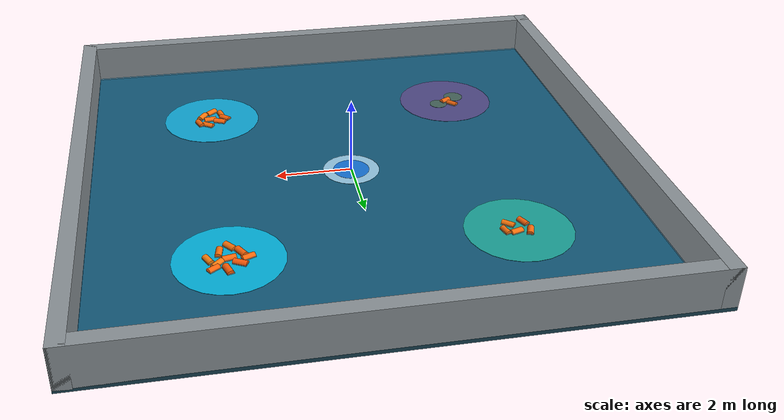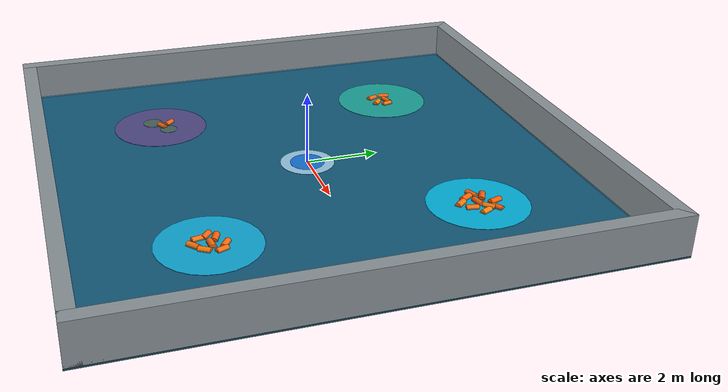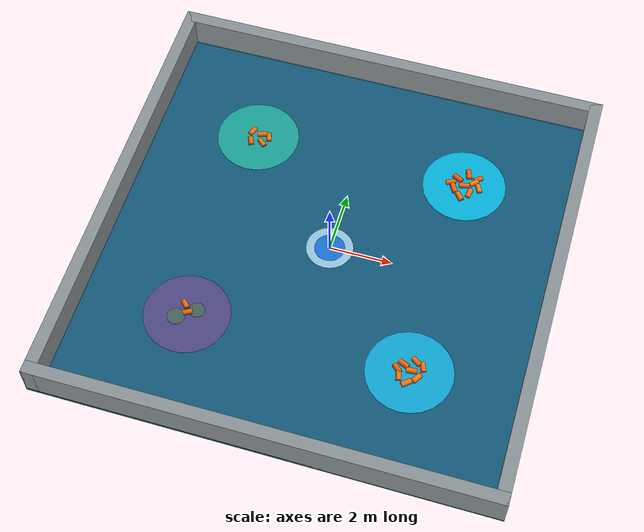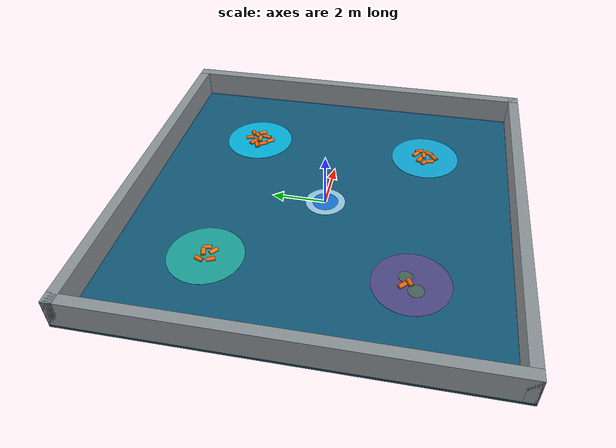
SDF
<?xml version="1.0" ?>
<sdf version="1.6">
  <world name="fish_farm_world">

    <!-- PHYSICS & SCENE CONFIGURATION                                       -->
    <physics type="ode">
      <real_time_update_rate>1000.0</real_time_update_rate>
      <max_step_size>0.001</max_step_size>
      <real_time_factor>1.0</real_time_factor>
      <ode>
        <solver>
          <type>quick</type>
          <iters>50</iters>
          <sor>1.4</sor>
        </solver>
        <constraints>
          <cfm>0.0</cfm>
          <erp>0.2</erp>
          <contact_max_correcting_vel>100.0</contact_max_correcting_vel>
          <contact_surface_layer>0.001</contact_surface_layer>
        </constraints>
      </ode>
    </physics>

    <scene>
      <ambient>0.65 0.72 0.78 1.0</ambient>
      <background>0.52 0.75 0.92 1.0</background>
      <shadows>true</shadows>
    </scene>

    <!-- Directional Sunlight -->
    <light type="directional" name="sun">
      <cast_shadows>true</cast_shadows>
      <pose>0 0 15 0 0 0</pose>
      <diffuse>0.9 0.9 0.85 1</diffuse>
      <specular>0.3 0.3 0.3 1</specular>
      <attenuation>
        <range>1000</range>
        <constant>0.9</constant>
        <linear>0.01</linear>
        <quadratic>0.001</quadratic>
      </attenuation>
      <direction>-0.3 0.2 -0.9</direction>
    </light>

    <!-- POND FLOOR & BOUNDING WALLS (14m x 14m Aquaculture Pond)            -->
    <model name="aquaculture_pond_structure">
      <static>true</static>
      <pose>0 0 0 0 0 0</pose>

      <!-- Pond Floor (Collision + Dark Teal Floor Visual) -->
      <link name="pond_floor">
        <collision name="floor_collision">
          <pose>0 0 -0.05 0 0 0</pose>
          <geometry>
            <box>
              <size>16.0 16.0 0.1</size>
            </box>
          </geometry>
          <surface>
            <friction>
              <ode>
                <mu>0.1</mu>
                <mu2>0.1</mu2>
              </ode>
            </friction>
          </surface>
        </collision>
        <visual name="floor_visual">
          <pose>0 0 -0.05 0 0 0</pose>
          <geometry>
            <box>
              <size>14.4 14.4 0.1</size>
            </box>
          </geometry>
          <material>
            <ambient>0.08 0.22 0.28 1</ambient>
            <diffuse>0.10 0.26 0.32 1</diffuse>
            <specular>0.05 0.05 0.05 1</specular>
          </material>
        </visual>

        <!-- North Wall (+X = +7.0m) -->
        <collision name="wall_north_col">
          <pose>7.0 0 0.5 0 0 0</pose>
          <geometry><box><size>0.4 14.4 1.1</size></box></geometry>
        </collision>
        <visual name="wall_north_vis">
          <pose>7.0 0 0.5 0 0 0</pose>
          <geometry><box><size>0.4 14.4 1.1</size></box></geometry>
          <material>
            <ambient>0.45 0.47 0.50 1</ambient>
            <diffuse>0.55 0.58 0.60 1</diffuse>
          </material>
        </visual>

        <!-- South Wall (-X = -7.0m) -->
        <collision name="wall_south_col">
          <pose>-7.0 0 0.5 0 0 0</pose>
          <geometry><box><size>0.4 14.4 1.1</size></box></geometry>
        </collision>
        <visual name="wall_south_vis">
          <pose>-7.0 0 0.5 0 0 0</pose>
          <geometry><box><size>0.4 14.4 1.1</size></box></geometry>
          <material>
            <ambient>0.45 0.47 0.50 1</ambient>
            <diffuse>0.55 0.58 0.60 1</diffuse>
          </material>
        </visual>

        <!-- East Wall (+Y = +7.0m) -->
        <collision name="wall_east_col">
          <pose>0 7.0 0.5 0 0 0</pose>
          <geometry><box><size>14.4 0.4 1.1</size></box></geometry>
        </collision>
        <visual name="wall_east_vis">
          <pose>0 7.0 0.5 0 0 0</pose>
          <geometry><box><size>14.4 0.4 1.1</size></box></geometry>
          <material>
            <ambient>0.45 0.47 0.50 1</ambient>
            <diffuse>0.55 0.58 0.60 1</diffuse>
          </material>
        </visual>

        <!-- West Wall (-Y = -7.0m) -->
        <collision name="wall_west_col">
          <pose>0 -7.0 0.5 0 0 0</pose>
          <geometry><box><size>14.4 0.4 1.1</size></box></geometry>
        </collision>
        <visual name="wall_west_vis">
          <pose>0 -7.0 0.5 0 0 0</pose>
          <geometry><box><size>14.4 0.4 1.1</size></box></geometry>
          <material>
            <ambient>0.45 0.47 0.50 1</ambient>
            <diffuse>0.55 0.58 0.60 1</diffuse>
          </material>
        </visual>

        <!-- Semi-Transparent Water Surface Plane -->
        <visual name="water_surface_plane">
          <pose>0 0 0.035 0 0 0</pose>
          <transparency>0.62</transparency>
          <cast_shadows>false</cast_shadows>
          <geometry>
            <box>
              <size>13.6 13.6 0.004</size>
            </box>
          </geometry>
          <material>
            <ambient>0.05 0.48 0.68 0.38</ambient>
            <diffuse>0.08 0.55 0.78 0.38</diffuse>
            <specular>0.6 0.6 0.6 0.38</specular>
          </material>
        </visual>

        <!-- HOME / REFILL DOCK AT (0.0, 0.0) -->
        <visual name="home_dock_pad">
          <pose>0 0 0.003 0 0 0</pose>
          <geometry>
            <cylinder>
              <radius>0.75</radius>
              <length>0.006</length>
            </cylinder>
          </geometry>
          <material>
            <ambient>0.85 0.88 0.92 1</ambient>
            <diffuse>0.92 0.95 0.98 1</diffuse>
          </material>
        </visual>
        <visual name="home_dock_inner">
          <pose>0 0 0.005 0 0 0</pose>
          <geometry>
            <cylinder>
              <radius>0.48</radius>
              <length>0.006</length>
            </cylinder>
          </geometry>
          <material>
            <ambient>0.10 0.38 0.85 1</ambient>
            <diffuse>0.12 0.42 0.90 1</diffuse>
          </material>
        </visual>
      </link>
    </model>

    <!-- FEEDING ZONE 1 (X=3.5, Y=3.5): HIGH FISH AGGREGATION / DEPLETED     -->
    <!-- Needs immediate feeding! Vibrant exposed cyan tray + dense orange   -->
    <!-- fish school cluster so OpenCV camera detects ~85-95% demand.        -->
    <model name="feeding_zone_1_high_demand">
      <static>true</static>
      <pose>3.5 3.5 0.0 0 0 0</pose>
      <link name="zone_1_link">
        <!-- Depleted Feed Tray Base (Bright Cyan/Turquoise Floor Disc) -->
        <visual name="z1_tray">
          <pose>0 0 0.004 0 0 0</pose>
          <geometry>
            <cylinder><radius>1.35</radius><length>0.008</length></cylinder>
          </geometry>
          <material>
            <ambient>0.0 0.72 0.85 1</ambient>
            <diffuse>0.0 0.82 0.95 1</diffuse>
          </material>
        </visual>

        <!-- High-Density Active Fish School (Vibrant Orange/Gold Fish Silhouettes) -->
        <visual name="z1_fish_1"><pose>0.0 0.0 0.018 0 1.57 0.2</pose><geometry><cylinder><radius>0.09</radius><length>0.34</length></cylinder></geometry><material><ambient>0.95 0.38 0.02 1</ambient><diffuse>1.0 0.42 0.05 1</diffuse></material></visual>
        <visual name="z1_fish_2"><pose>0.28 0.18 0.018 0 1.57 0.8</pose><geometry><cylinder><radius>0.085</radius><length>0.32</length></cylinder></geometry><material><ambient>0.98 0.45 0.04 1</ambient><diffuse>1.0 0.50 0.06 1</diffuse></material></visual>
        <visual name="z1_fish_3"><pose>-0.25 0.22 0.018 0 1.57 -0.5</pose><geometry><cylinder><radius>0.09</radius><length>0.35</length></cylinder></geometry><material><ambient>0.95 0.32 0.02 1</ambient><diffuse>1.0 0.36 0.04 1</diffuse></material></visual>
        <visual name="z1_fish_4"><pose>0.22 -0.26 0.018 0 1.57 1.4</pose><geometry><cylinder><radius>0.085</radius><length>0.33</length></cylinder></geometry><material><ambient>0.95 0.40 0.03 1</ambient><diffuse>1.0 0.45 0.05 1</diffuse></material></visual>
        <visual name="z1_fish_5"><pose>-0.30 -0.20 0.018 0 1.57 2.1</pose><geometry><cylinder><radius>0.09</radius><length>0.34</length></cylinder></geometry><material><ambient>0.95 0.35 0.02 1</ambient><diffuse>1.0 0.40 0.04 1</diffuse></material></visual>
        <visual name="z1_fish_6"><pose>0.48 0.0 0.018 0 1.57 -1.1</pose><geometry><cylinder><radius>0.085</radius><length>0.31</length></cylinder></geometry><material><ambient>0.98 0.48 0.05 1</ambient><diffuse>1.0 0.52 0.06 1</diffuse></material></visual>
        <visual name="z1_fish_7"><pose>-0.45 0.02 0.018 0 1.57 0.4</pose><geometry><cylinder><radius>0.085</radius><length>0.32</length></cylinder></geometry><material><ambient>0.95 0.38 0.02 1</ambient><diffuse>1.0 0.42 0.05 1</diffuse></material></visual>
        <visual name="z1_fish_8"><pose>0.05 0.45 0.018 0 1.57 1.9</pose><geometry><cylinder><radius>0.09</radius><length>0.34</length></cylinder></geometry><material><ambient>0.95 0.32 0.02 1</ambient><diffuse>1.0 0.38 0.04 1</diffuse></material></visual>
        <visual name="z1_fish_9"><pose>-0.05 -0.46 0.018 0 1.57 -0.9</pose><geometry><cylinder><radius>0.09</radius><length>0.33</length></cylinder></geometry><material><ambient>0.96 0.42 0.03 1</ambient><diffuse>1.0 0.46 0.05 1</diffuse></material></visual>
        <visual name="z1_fish_10"><pose>0.38 0.36 0.018 0 1.57 0.6</pose><geometry><cylinder><radius>0.085</radius><length>0.30</length></cylinder></geometry><material><ambient>0.95 0.36 0.02 1</ambient><diffuse>1.0 0.40 0.05 1</diffuse></material></visual>
      </link>
    </model>

    <!-- FEEDING ZONE 2 (X=-3.5, Y=3.5): NORMAL BALANCED ZONE                -->
    <!-- Healthy water parameters, moderate fish density & feeding activity. -->
    <model name="feeding_zone_2_normal">
      <static>true</static>
      <pose>-3.5 3.5 0.0 0 0 0</pose>
      <link name="zone_2_link">
        <visual name="z2_tray">
          <pose>0 0 0.004 0 0 0</pose>
          <geometry>
            <cylinder><radius>1.35</radius><length>0.008</length></cylinder>
          </geometry>
          <material>
            <ambient>0.12 0.62 0.45 1</ambient>
            <diffuse>0.15 0.72 0.52 1</diffuse>
          </material>
        </visual>

        <!-- Moderate Fish Group -->
        <visual name="z2_fish_1"><pose>0.10 0.12 0.018 0 1.57 0.3</pose><geometry><cylinder><radius>0.085</radius><length>0.32</length></cylinder></geometry><material><ambient>0.95 0.40 0.03 1</ambient><diffuse>1.0 0.45 0.05 1</diffuse></material></visual>
        <visual name="z2_fish_2"><pose>-0.24 0.15 0.018 0 1.57 1.2</pose><geometry><cylinder><radius>0.085</radius><length>0.31</length></cylinder></geometry><material><ambient>0.95 0.38 0.02 1</ambient><diffuse>1.0 0.42 0.05 1</diffuse></material></visual>
        <visual name="z2_fish_3"><pose>0.20 -0.22 0.018 0 1.57 -0.7</pose><geometry><cylinder><radius>0.085</radius><length>0.32</length></cylinder></geometry><material><ambient>0.95 0.42 0.03 1</ambient><diffuse>1.0 0.48 0.05 1</diffuse></material></visual>
        <visual name="z2_fish_4"><pose>-0.18 -0.25 0.018 0 1.57 2.0</pose><geometry><cylinder><radius>0.085</radius><length>0.30</length></cylinder></geometry><material><ambient>0.95 0.36 0.02 1</ambient><diffuse>1.0 0.40 0.05 1</diffuse></material></visual>
        <visual name="z2_fish_5"><pose>0.35 0.05 0.018 0 1.57 -1.3</pose><geometry><cylinder><radius>0.08</radius><length>0.29</length></cylinder></geometry><material><ambient>0.95 0.40 0.03 1</ambient><diffuse>1.0 0.45 0.05 1</diffuse></material></visual>
      </link>
    </model>

    <!-- FEEDING ZONE 3 (X=-3.5, Y=-3.5): POOR WATER QUALITY ANOMALY ZONE    -->
    <!-- Low Dissolved Oxygen (3.1 mg/L < 4.0) & Acidic pH (5.8 < 6.5).      -->
    <!-- Dark murky purple-brown anoxic floor patch.                         -->
    <model name="feeding_zone_3_poor_water_quality">
      <static>true</static>
      <pose>-3.5 -3.5 0.0 0 0 0</pose>
      <link name="zone_3_link">
        <visual name="z3_anoxic_patch">
          <pose>0 0 0.004 0 0 0</pose>
          <geometry>
            <cylinder><radius>1.35</radius><length>0.008</length></cylinder>
          </geometry>
          <material>
            <ambient>0.42 0.12 0.35 1</ambient>
            <diffuse>0.48 0.15 0.40 1</diffuse>
          </material>
        </visual>

        <!-- Algae / Uneaten Decomposing Sediment Spots -->
        <visual name="z3_sediment_1"><pose>0.25 0.20 0.012 0 0 0</pose><geometry><cylinder><radius>0.25</radius><length>0.01</length></cylinder></geometry><material><ambient>0.35 0.28 0.10 1</ambient><diffuse>0.42 0.32 0.12 1</diffuse></material></visual>
        <visual name="z3_sediment_2"><pose>-0.30 -0.18 0.012 0 0 0</pose><geometry><cylinder><radius>0.28</radius><length>0.01</length></cylinder></geometry><material><ambient>0.35 0.28 0.10 1</ambient><diffuse>0.42 0.32 0.12 1</diffuse></material></visual>
        <visual name="z3_fish_1"><pose>0.0 0.05 0.018 0 1.57 0.5</pose><geometry><cylinder><radius>0.085</radius><length>0.30</length></cylinder></geometry><material><ambient>0.90 0.35 0.05 1</ambient><diffuse>0.95 0.40 0.05 1</diffuse></material></visual>
        <visual name="z3_fish_2"><pose>-0.15 0.28 0.018 0 1.57 -0.8</pose><geometry><cylinder><radius>0.085</radius><length>0.30</length></cylinder></geometry><material><ambient>0.90 0.35 0.05 1</ambient><diffuse>0.95 0.40 0.05 1</diffuse></material></visual>
      </link>
    </model>

    <!-- FEEDING ZONE 4 (X=3.5, Y=-3.5): HIGH ACTIVITY & SEDIMENT AGITATION  -->
    <!-- High fish feeding activity (~80% demand) with safe DO & pH.         -->
    <model name="feeding_zone_4_active_school">
      <static>true</static>
      <pose>3.5 -3.5 0.0 0 0 0</pose>
      <link name="zone_4_link">
        <visual name="z4_tray">
          <pose>0 0 0.004 0 0 0</pose>
          <geometry>
            <cylinder><radius>1.35</radius><length>0.008</length></cylinder>
          </geometry>
          <material>
            <ambient>0.05 0.65 0.80 1</ambient>
            <diffuse>0.08 0.75 0.90 1</diffuse>
          </material>
        </visual>

        <!-- Active Fish School -->
        <visual name="z4_fish_1"><pose>0.05 0.05 0.018 0 1.57 0.1</pose><geometry><cylinder><radius>0.09</radius><length>0.33</length></cylinder></geometry><material><ambient>0.95 0.38 0.02 1</ambient><diffuse>1.0 0.44 0.05 1</diffuse></material></visual>
        <visual name="z4_fish_2"><pose>0.26 -0.15 0.018 0 1.57 1.0</pose><geometry><cylinder><radius>0.09</radius><length>0.32</length></cylinder></geometry><material><ambient>0.98 0.44 0.03 1</ambient><diffuse>1.0 0.48 0.05 1</diffuse></material></visual>
        <visual name="z4_fish_3"><pose>-0.22 0.20 0.018 0 1.57 -0.4</pose><geometry><cylinder><radius>0.09</radius><length>0.34</length></cylinder></geometry><material><ambient>0.95 0.35 0.02 1</ambient><diffuse>1.0 0.40 0.04 1</diffuse></material></visual>
        <visual name="z4_fish_4"><pose>-0.28 -0.22 0.018 0 1.57 1.8</pose><geometry><cylinder><radius>0.085</radius><length>0.31</length></cylinder></geometry><material><ambient>0.95 0.40 0.03 1</ambient><diffuse>1.0 0.45 0.05 1</diffuse></material></visual>
        <visual name="z4_fish_5"><pose>0.35 0.25 0.018 0 1.57 -1.2</pose><geometry><cylinder><radius>0.085</radius><length>0.32</length></cylinder></geometry><material><ambient>0.95 0.38 0.02 1</ambient><diffuse>1.0 0.42 0.05 1</diffuse></material></visual>
        <visual name="z4_fish_6"><pose>0.0 -0.38 0.018 0 1.57 0.7</pose><geometry><cylinder><radius>0.09</radius><length>0.33</length></cylinder></geometry><material><ambient>0.96 0.42 0.03 1</ambient><diffuse>1.0 0.46 0.05 1</diffuse></material></visual>
        <visual name="z4_fish_7"><pose>-0.38 0.0 0.018 0 1.57 2.4</pose><geometry><cylinder><radius>0.085</radius><length>0.31</length></cylinder></geometry><material><ambient>0.95 0.36 0.02 1</ambient><diffuse>1.0 0.40 0.05 1</diffuse></material></visual>
        <visual name="z4_fish_8"><pose>0.12 0.38 0.018 0 1.57 -0.6</pose><geometry><cylinder><radius>0.085</radius><length>0.32</length></cylinder></geometry><material><ambient>0.95 0.38 0.02 1</ambient><diffuse>1.0 0.44 0.05 1</diffuse></material></visual>
      </link>
    </model>

  </world>
</sdf>
